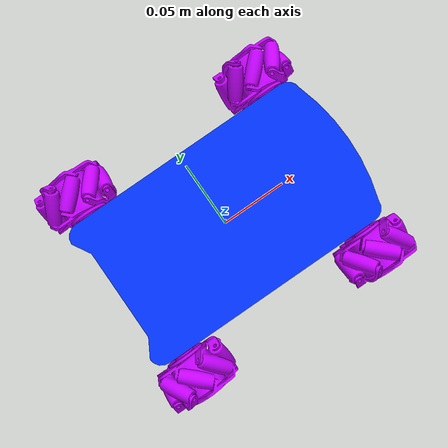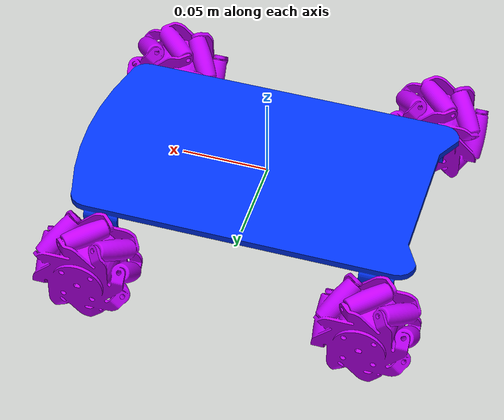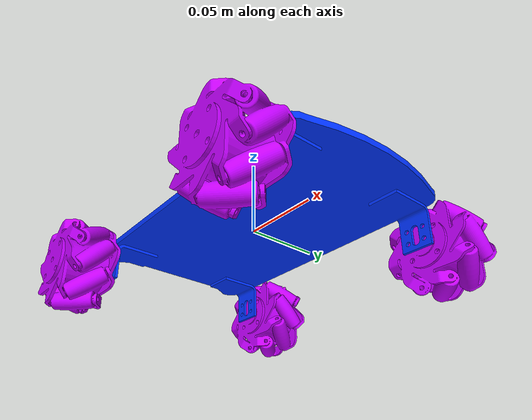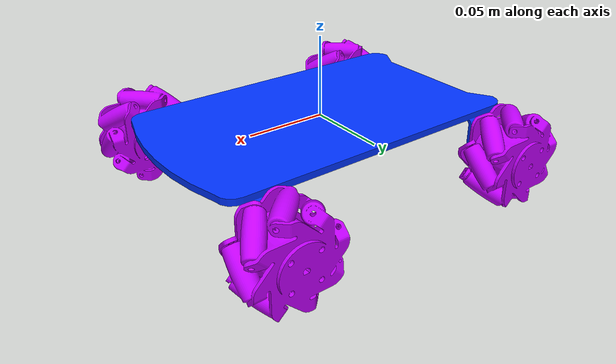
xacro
<?xml version="1.0" encoding="utf-8"?>
<robot name="omni_car" xmlns:xacro="http://www.ros.org/wiki/xacro">
  <xacro:include filename="$(find omni_car_description)/urdf/wheel.xacro"/>

  <link name="base_link"/>

  <link name="frame">
    <inertial>
      <origin xyz="0 0 0" rpy="0 0 0" />
      <mass value="2.0" />
      <inertia ixx="0.02" ixy="0.0" ixz="0.0" iyy="0.02" iyz="0.0" izz="0.02" />
    </inertial>
    <visual>
      <origin xyz="0 0 0" rpy="0 0 0" />
      <geometry>
        <mesh filename="file://$(find omni_car_description)/meshes/base_link.dae" />
      </geometry>
      <material name="">
        <color rgba="0.0 0.2 1 1" />
      </material>
    </visual>
    <collision>
      <origin xyz="0 0 0" rpy="0 0 0" />
      <geometry>
        <box size="0.23 0.13 0.01"/>
      </geometry>
    </collision>
  </link>

  <joint name="base_to_frame" type="fixed">
    <parent link="base_link"/>
    <child link="frame"/>
    <origin xyz="0 0 0" rpy="0 0 0"/>
  </joint>

  <xacro:property name="wheel_x_offset" value="0.081"/>
  <xacro:property name="wheel_y_offset" value="0.098"/>
  <xacro:property name="wheel_z_offset" value="-0.02"/>
  <xacro:wheel wheel_name="front_left" is_right="false" wheel_x_offset="${wheel_x_offset}" wheel_y_offset="${wheel_y_offset}" wheel_z_offset="${wheel_z_offset}"/>
  <xacro:wheel wheel_name="front_right" is_right="true" wheel_x_offset="${wheel_x_offset}" wheel_y_offset="${-wheel_y_offset}" wheel_z_offset="${wheel_z_offset}"/>
  <xacro:wheel wheel_name="rear_left" is_right="false" wheel_x_offset="${-wheel_x_offset}" wheel_y_offset="${wheel_y_offset}" wheel_z_offset="${wheel_z_offset}"/>
  <xacro:wheel wheel_name="rear_right" is_right="true" wheel_x_offset="${-wheel_x_offset}" wheel_y_offset="${-wheel_y_offset}" wheel_z_offset="${wheel_z_offset}"/>

  <!-- Main ROS2 control configuration -->
  <ros2_control name="omni_car" type="system">
    <hardware>
      <plugin>gazebo_ros2_control/GazeboSystem</plugin>
    </hardware>
    <joint name="wheel_front_left_joint">
      <command_interface name="velocity"/>
      <state_interface name="velocity"/>
    </joint>
    <joint name="wheel_front_right_joint">
      <command_interface name="velocity"/>
      <state_interface name="velocity"/>
    </joint>
    <joint name="wheel_rear_left_joint">
      <command_interface name="velocity"/>
      <state_interface name="velocity"/>
    </joint>
    <joint name="wheel_rear_right_joint">
      <command_interface name="velocity"/>
      <state_interface name="velocity"/>
    </joint>
  </ros2_control>

</robot>

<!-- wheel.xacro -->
<robot xmlns:xacro="http://wiki.ros.org/xacro">
    <xacro:macro name="wheel" params="wheel_name is_right wheel_x_offset wheel_y_offset wheel_z_offset">
        <link name="wheel_${wheel_name}">
            <inertial>
                <origin xyz="0 0 0" rpy="0 0 0" />
                <mass value="0.3" />
                <inertia ixx="0.02" ixy="0.0" ixz="0.0" iyy="0.02" iyz="0.0" izz="0.02" />
            </inertial>
            <visual>
                <origin xyz="0 0 0" rpy="0 0 0" />
                <geometry>
                    <xacro:if value="${is_right}">
                        <mesh filename="file://$(find omni_car_description)/meshes/wheel_r.dae" />
                    </xacro:if>
                    <xacro:unless value="${is_right}">
                        <mesh filename="file://$(find omni_car_description)/meshes/wheel_l.dae" />
                    </xacro:unless>
                </geometry>
                <material name="">
                    <color rgba="0.77 0 1 1" />
                </material>
            </visual>
            <collision>
                <origin xyz="0 0 0" rpy="0 0 0" />
                <geometry>
                    <cylinder radius="0.0" length="0.0"/>
                </geometry>
            </collision>
        </link>

        <link name="wheel_${wheel_name}_force_transform">
            <inertial>
                <origin xyz="0 0 0" rpy="0 0 0" />
                <mass value="0.3" />
                <inertia ixx="0.02" ixy="0.0" ixz="0.0" iyy="0.02" iyz="0.0" izz="0.02" />
            </inertial>
            <visual>
                <origin xyz="0 0 0" rpy="0 0 0" />
                <geometry>
                    <cylinder radius="0.0" length="0.0"/>
                </geometry>
            </visual>
            <collision>
                <origin xyz="0 0 0" rpy="0 0 0" />
                <geometry>
                    <cylinder radius="0.03" length="0.05"/>
                </geometry>
            </collision>
        </link>

        <joint name="wheel_${wheel_name}_joint" type="continuous">
            <parent link="frame" />
            <child link="wheel_${wheel_name}" />
            <axis xyz="0 0 1" />
            <origin xyz="${wheel_x_offset} ${wheel_y_offset} ${wheel_z_offset}" rpy="${-pi/2} 0 0"/>
            <limit velocity="15.0" effort="30"/>
        </joint>

        <joint name="wheel_${wheel_name}_joint_force_transform" type="continuous">
            <parent link="frame"/>
            <child link="wheel_${wheel_name}_force_transform"/>
            <xacro:if value="${is_right}">
                <origin xyz="${wheel_x_offset} ${wheel_y_offset} ${wheel_z_offset}" rpy="${-pi/2} 0 ${pi/4}"/> <!-- 45 deg rotate -->
            </xacro:if>
            <xacro:unless value="${is_right}">
                <origin xyz="${wheel_x_offset} ${wheel_y_offset} ${wheel_z_offset}" rpy="${-pi/2} 0 ${-pi/4}"/> <!-- 45 deg rotate -->
            </xacro:unless>
            <axis xyz="0 0 1"/>
            <mimic joint="wheel_${wheel_name}_joint" multiplier="1.0"/>
        </joint>

        <transmission name="${wheel_name}_trans">
            <type>transmission_interface/SimpleTransmission</type>
            <joint name="wheel_${wheel_name}_joint">
                <hardwareInterface>VelocityJointInterface</hardwareInterface>
            </joint>
            <actuator name="${wheel_name}_motor">
                <mechanicalReduction>1</mechanicalReduction>
            </actuator>
        </transmission>

    </xacro:macro>
</robot>
